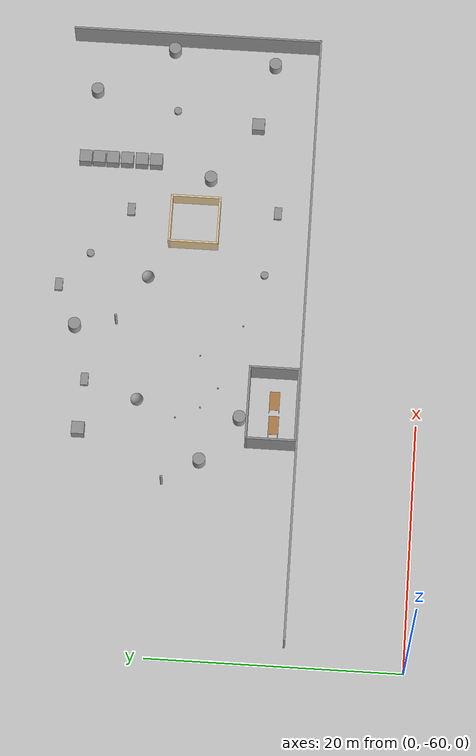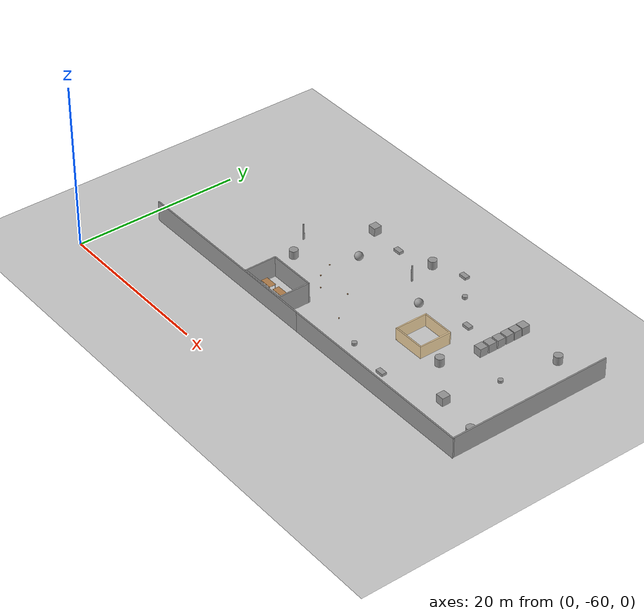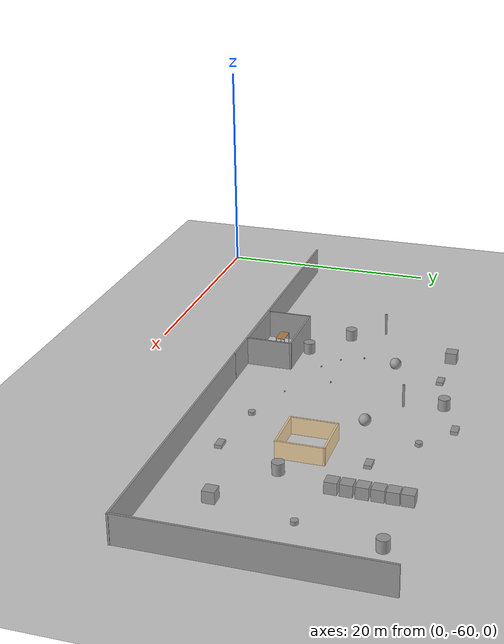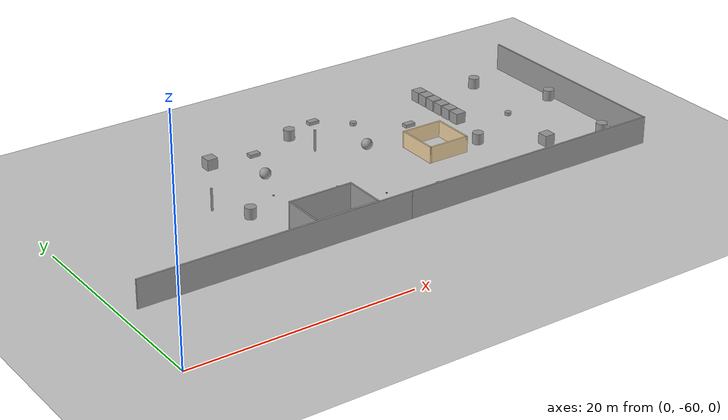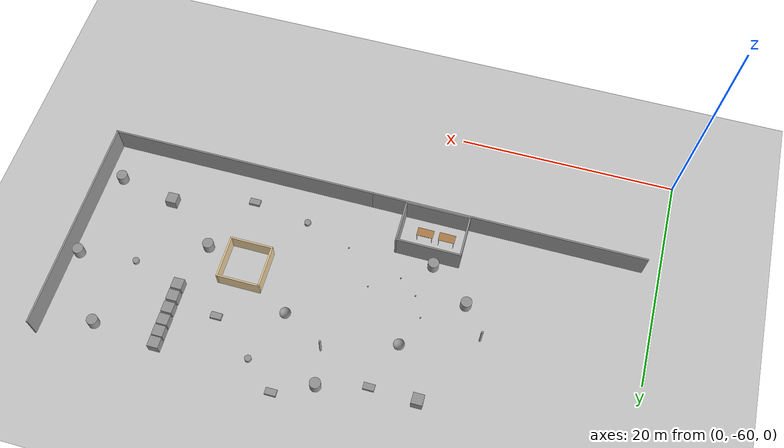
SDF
<sdf version="1.6">
 <world name="default">
  <model name="ground_plane">
   <static>1</static>
   <link name="link">
    <collision name="collision">
     <geometry><plane><normal>0 0 1</normal><size>105 105</size></plane></geometry>
     <surface>
      <contact><collide_bitmask>65535</collide_bitmask></contact>
      <friction><ode><mu>100</mu><mu2>50</mu2></ode></friction>
     </surface>
    </collision>
    <visual name="visual">
     <cast_shadows>0</cast_shadows>
     <geometry><plane><normal>0 0 1</normal><size>105 105</size></plane></geometry>
     <material>
      <script><uri>file://media/materials/scripts/gazebo.material</uri><name>Gazebo/Grey</name></script>
     </material>
    </visual>
   </link>
  </model>
  <model name="unit_cylinder_2">
   <pose>15.9962 -43.1928 0.499805 -0 -0 -0</pose>
   <link name="link">
    <inertial>
     <mass>1</mass>
     <inertia><ixx>0.145833</ixx><ixy>0</ixy><ixz>0</ixz><iyy>0.145833</iyy><iyz>0</iyz><izz>0.125</izz></inertia>
    </inertial>
    <collision name="collision">
     <geometry><cylinder><radius>0.5</radius><length>1</length></cylinder></geometry>
    </collision>
    <visual name="visual">
     <geometry><cylinder><radius>0.5</radius><length>1</length></cylinder></geometry>
     <material>
      <script><name>Gazebo/Grey</name><uri>file://media/materials/scripts/gazebo.material</uri></script>
     </material>
    </visual>
   </link>
  </model>
  <model name="base4x6_0">
   <pose>20.4097 -48.6671 0 0 -0 0</pose>
   <link name="Wall_23">
    <collision name="Wall_23_Collision">
     <geometry><box><size>4 0.15 2.5</size></box></geometry>
     <pose>0 0 1.25 0 -0 0</pose>
    </collision>
    <visual name="Wall_23_Visual">
     <pose>0 0 1.25 0 -0 0</pose>
     <geometry><box><size>4 0.15 2.5</size></box></geometry>
     <material>
      <script><uri>file://media/materials/scripts/gazebo.material</uri><name>Gazebo/Grey</name></script>
      <ambient>1 1 1 1</ambient>
     </material>
     <meta><layer>0</layer></meta>
    </visual>
    <pose>-2.925 0 0 0 -0 -1.5708</pose>
   </link>
   <link name="Wall_24">
    <collision name="Wall_24_Collision">
     <geometry><box><size>6 0.15 2.5</size></box></geometry>
     <pose>0 0 1.25 0 -0 0</pose>
    </collision>
    <visual name="Wall_24_Visual">
     <pose>0 0 1.25 0 -0 0</pose>
     <geometry><box><size>6 0.15 2.5</size></box></geometry>
     <material>
      <script><uri>file://media/materials/scripts/gazebo.material</uri><name>Gazebo/Grey</name></script>
      <ambient>1 1 1 1</ambient>
     </material>
     <meta><layer>0</layer></meta>
    </visual>
    <pose>-0 -1.925 0 0 -0 0</pose>
   </link>
   <link name="Wall_25">
    <collision name="Wall_25_Collision">
     <geometry><box><size>4 0.15 2.5</size></box></geometry>
     <pose>0 0 1.25 0 -0 0</pose>
    </collision>
    <visual name="Wall_25_Visual">
     <pose>0 0 1.25 0 -0 0</pose>
     <geometry><box><size>4 0.15 2.5</size></box></geometry>
     <material>
      <script><uri>file://media/materials/scripts/gazebo.material</uri><name>Gazebo/Grey</name></script>
      <ambient>1 1 1 1</ambient>
     </material>
     <meta><layer>0</layer></meta>
    </visual>
    <pose>2.925 0 0 0 -0 1.5708</pose>
   </link>
   <link name="Wall_26">
    <collision name="Wall_26_Collision">
     <geometry><box><size>6 0.15 2.5</size></box></geometry>
     <pose>0 0 1.25 0 -0 0</pose>
    </collision>
    <visual name="Wall_26_Visual">
     <pose>0 0 1.25 0 -0 0</pose>
     <geometry><box><size>6 0.15 2.5</size></box></geometry>
     <material>
      <script><uri>file://media/materials/scripts/gazebo.material</uri><name>Gazebo/Grey</name></script>
      <ambient>1 1 1 1</ambient>
     </material>
     <meta><layer>0</layer></meta>
    </visual>
    <pose>-0 1.925 0 0 -0 3.14159</pose>
   </link>
   <static>1</static>
  </model>
  <model name="wall_v20m_8">
   <pose>51.4045 -40.7218 0 0 -0 0</pose>
   <link name="Wall_35">
    <collision name="Wall_35_Collision">
     <geometry><box><size>20 0.15 2.5</size></box></geometry>
     <pose>0 0 1.25 0 -0 0</pose>
    </collision>
    <visual name="Wall_35_Visual">
     <pose>0 0 1.25 0 -0 0</pose>
     <geometry><box><size>20 0.15 2.5</size></box></geometry>
     <material>
      <script><uri>file://media/materials/scripts/gazebo.material</uri><name>Gazebo/Grey</name></script>
      <ambient>1 1 1 1</ambient>
     </material>
     <meta><layer>0</layer></meta>
    </visual>
    <pose>0 -0 0 0 -0 -1.5708</pose>
   </link>
   <static>1</static>
  </model>
  <model name="wall_25m_8">
   <pose>14.0268 -50.7126 0 0 -0 0</pose>
   <link name="Wall_28">
    <collision name="Wall_28_Collision">
     <geometry><box><size>25 0.15 2.5</size></box></geometry>
     <pose>0 0 1.25 0 -0 0</pose>
    </collision>
    <visual name="Wall_28_Visual">
     <pose>0 0 1.25 0 -0 0</pose>
     <geometry><box><size>25 0.15 2.5</size></box></geometry>
     <material>
      <script><uri>file://media/materials/scripts/gazebo.material</uri><name>Gazebo/Grey</name></script>
      <ambient>1 1 1 1</ambient>
     </material>
     <meta><layer>0</layer></meta>
    </visual>
   </link>
   <static>1</static>
  </model>
  <model name="wall_25m_9">
   <pose>39.0197 -50.7168 0 0 -0 0</pose>
   <link name="Wall_28">
    <collision name="Wall_28_Collision">
     <geometry><box><size>25 0.15 2.5</size></box></geometry>
     <pose>0 0 1.25 0 -0 0</pose>
    </collision>
    <visual name="Wall_28_Visual">
     <pose>0 0 1.25 0 -0 0</pose>
     <geometry><box><size>25 0.15 2.5</size></box></geometry>
     <material>
      <script><uri>file://media/materials/scripts/gazebo.material</uri><name>Gazebo/Grey</name></script>
      <ambient>1 1 1 1</ambient>
     </material>
     <meta><layer>0</layer></meta>
    </visual>
   </link>
   <static>1</static>
  </model>
  <model name="table_12">
   <static>1</static>
   <link name="link">
    <collision name="surface">
     <pose>0 0 1 0 -0 0</pose>
     <geometry><box><size>1.5 0.8 0.03</size></box></geometry>
     <surface><friction><ode><mu>0.6</mu><mu2>0.6</mu2></ode></friction></surface>
    </collision>
    <visual name="visual1">
     <pose>0 0 1 0 -0 0</pose>
     <geometry><box><size>1.5 0.8 0.03</size></box></geometry>
     <material>
      <script><uri>file://media/materials/scripts/gazebo.material</uri><name>Gazebo/Wood</name></script>
     </material>
    </visual>
    <collision name="front_left_leg">
     <pose>0.68 0.38 0.5 0 -0 0</pose>
     <geometry><cylinder><radius>0.02</radius><length>1</length></cylinder></geometry>
    </collision>
    <visual name="front_left_leg">
     <pose>0.68 0.38 0.5 0 -0 0</pose>
     <geometry><cylinder><radius>0.02</radius><length>1</length></cylinder></geometry>
     <material>
      <script><uri>file://media/materials/scripts/gazebo.material</uri><name>Gazebo/Grey</name></script>
     </material>
    </visual>
    <collision name="front_right_leg">
     <pose>0.68 -0.38 0.5 0 -0 0</pose>
     <geometry><cylinder><radius>0.02</radius><length>1</length></cylinder></geometry>
    </collision>
    <visual name="front_right_leg">
     <pose>0.68 -0.38 0.5 0 -0 0</pose>
     <geometry><cylinder><radius>0.02</radius><length>1</length></cylinder></geometry>
     <material>
      <script><uri>file://media/materials/scripts/gazebo.material</uri><name>Gazebo/Grey</name></script>
     </material>
    </visual>
    <collision name="back_right_leg">
     <pose>-0.68 -0.38 0.5 0 -0 0</pose>
     <geometry><cylinder><radius>0.02</radius><length>1</length></cylinder></geometry>
    </collision>
    <visual name="back_right_leg">
     <pose>-0.68 -0.38 0.5 0 -0 0</pose>
     <geometry><cylinder><radius>0.02</radius><length>1</length></cylinder></geometry>
     <material>
      <script><uri>file://media/materials/scripts/gazebo.material</uri><name>Gazebo/Grey</name></script>
     </material>
    </visual>
    <collision name="back_left_leg">
     <pose>-0.68 0.38 0.5 0 -0 0</pose>
     <geometry><cylinder><radius>0.02</radius><length>1</length></cylinder></geometry>
    </collision>
    <visual name="back_left_leg">
     <pose>-0.68 0.38 0.5 0 -0 0</pose>
     <geometry><cylinder><radius>0.02</radius><length>1</length></cylinder></geometry>
     <material>
      <script><uri>file://media/materials/scripts/gazebo.material</uri><name>Gazebo/Grey</name></script>
     </material>
    </visual>
   </link>
   <pose>19.0783 -48.8312 0 0 -0 0</pose>
  </model>
  <model name="table_13">
   <static>1</static>
   <link name="link">
    <collision name="surface">
     <pose>0 0 1 0 -0 0</pose>
     <geometry><box><size>1.5 0.8 0.03</size></box></geometry>
     <surface><friction><ode><mu>0.6</mu><mu2>0.6</mu2></ode></friction></surface>
    </collision>
    <visual name="visual1">
     <pose>0 0 1 0 -0 0</pose>
     <geometry><box><size>1.5 0.8 0.03</size></box></geometry>
     <material>
      <script><uri>file://media/materials/scripts/gazebo.material</uri><name>Gazebo/Wood</name></script>
     </material>
    </visual>
    <collision name="front_left_leg">
     <pose>0.68 0.38 0.5 0 -0 0</pose>
     <geometry><cylinder><radius>0.02</radius><length>1</length></cylinder></geometry>
    </collision>
    <visual name="front_left_leg">
     <pose>0.68 0.38 0.5 0 -0 0</pose>
     <geometry><cylinder><radius>0.02</radius><length>1</length></cylinder></geometry>
     <material>
      <script><uri>file://media/materials/scripts/gazebo.material</uri><name>Gazebo/Grey</name></script>
     </material>
    </visual>
    <collision name="front_right_leg">
     <pose>0.68 -0.38 0.5 0 -0 0</pose>
     <geometry><cylinder><radius>0.02</radius><length>1</length></cylinder></geometry>
    </collision>
    <visual name="front_right_leg">
     <pose>0.68 -0.38 0.5 0 -0 0</pose>
     <geometry><cylinder><radius>0.02</radius><length>1</length></cylinder></geometry>
     <material>
      <script><uri>file://media/materials/scripts/gazebo.material</uri><name>Gazebo/Grey</name></script>
     </material>
    </visual>
    <collision name="back_right_leg">
     <pose>-0.68 -0.38 0.5 0 -0 0</pose>
     <geometry><cylinder><radius>0.02</radius><length>1</length></cylinder></geometry>
    </collision>
    <visual name="back_right_leg">
     <pose>-0.68 -0.38 0.5 0 -0 0</pose>
     <geometry><cylinder><radius>0.02</radius><length>1</length></cylinder></geometry>
     <material>
      <script><uri>file://media/materials/scripts/gazebo.material</uri><name>Gazebo/Grey</name></script>
     </material>
    </visual>
    <collision name="back_left_leg">
     <pose>-0.68 0.38 0.5 0 -0 0</pose>
     <geometry><cylinder><radius>0.02</radius><length>1</length></cylinder></geometry>
    </collision>
    <visual name="back_left_leg">
     <pose>-0.68 0.38 0.5 0 -0 0</pose>
     <geometry><cylinder><radius>0.02</radius><length>1</length></cylinder></geometry>
     <material>
      <script><uri>file://media/materials/scripts/gazebo.material</uri><name>Gazebo/Grey</name></script>
     </material>
    </visual>
   </link>
   <pose>21.0761 -48.8079 0 0 -0 0</pose>
  </model>
  <model name="unit_sphere">
   <pose>20.702 -37.9798 0.5 0 -0 0</pose>
   <link name="link">
    <inertial>
     <mass>1</mass>
     <inertia><ixx>0.1</ixx><ixy>0</ixy><ixz>0</ixz><iyy>0.1</iyy><iyz>0</iyz><izz>0.1</izz></inertia>
    </inertial>
    <collision name="collision"><geometry><sphere><radius>0.5</radius></sphere></geometry></collision>
    <visual name="visual">
     <geometry><sphere><radius>0.5</radius></sphere></geometry>
     <material>
      <script><name>Gazebo/Grey</name><uri>file://media/materials/scripts/gazebo.material</uri></script>
     </material>
    </visual>
   </link>
  </model>
  <model name="unit_sphere_0">
   <pose>30.9933 -38.1291 0.5 0 -0 0</pose>
   <link name="link">
    <inertial>
     <mass>1</mass>
     <inertia><ixx>0.1</ixx><ixy>0</ixy><ixz>0</ixz><iyy>0.1</iyy><iyz>0</iyz><izz>0.1</izz></inertia>
    </inertial>
    <collision name="collision"><geometry><sphere><radius>0.5</radius></sphere></geometry></collision>
    <visual name="visual">
     <geometry><sphere><radius>0.5</radius></sphere></geometry>
     <material>
      <script><name>Gazebo/Grey</name><uri>file://media/materials/scripts/gazebo.material</uri></script>
     </material>
    </visual>
   </link>
  </model>
  <model name="unit_cylinder">
   <pose>39.6954 -42.5641 0.499805 -0 -0 -0</pose>
   <link name="link">
    <inertial>
     <mass>1</mass>
     <inertia><ixx>0.145833</ixx><ixy>0</ixy><ixz>0</ixz><iyy>0.145833</iyy><iyz>0</iyz><izz>0.125</izz></inertia>
    </inertial>
    <collision name="collision">
     <geometry><cylinder><radius>0.5</radius><length>1</length></cylinder></geometry>
    </collision>
    <visual name="visual">
     <geometry><cylinder><radius>0.5</radius><length>1</length></cylinder></geometry>
     <material>
      <script><name>Gazebo/Grey</name><uri>file://media/materials/scripts/gazebo.material</uri></script>
     </material>
    </visual>
   </link>
  </model>
  <model name="box4x4x1.5_3">
   <pose>35.7872 -41.5085 0 0 -0 0</pose>
   <link name="Wall_5">
    <collision name="Wall_5_Collision">
     <geometry><box><size>4 0.15 1.5</size></box></geometry>
     <pose>0 0 0.75 0 -0 0</pose>
    </collision>
    <visual name="Wall_5_Visual">
     <pose>0 0 0.75 0 -0 0</pose>
     <geometry><box><size>4 0.15 1.5</size></box></geometry>
     <material>
      <script><uri>file://media/materials/scripts/gazebo.material</uri><name>Gazebo/Grey</name></script>
      <ambient>0.921569 0.807843 0.615686 1</ambient>
     </material>
     <meta><layer>0</layer></meta>
    </visual>
    <pose>-1.925 -0 0 0 -0 -1.5708</pose>
   </link>
   <link name="Wall_6">
    <collision name="Wall_6_Collision">
     <geometry><box><size>4 0.15 1.5</size></box></geometry>
     <pose>0 0 0.75 0 -0 0</pose>
    </collision>
    <visual name="Wall_6_Visual">
     <pose>0 0 0.75 0 -0 0</pose>
     <geometry><box><size>4 0.15 1.5</size></box></geometry>
     <material>
      <script><uri>file://media/materials/scripts/gazebo.material</uri><name>Gazebo/Grey</name></script>
      <ambient>0.921569 0.807843 0.615686 1</ambient>
     </material>
     <meta><layer>0</layer></meta>
    </visual>
    <pose>0 -1.925 0 0 -0 0</pose>
   </link>
   <link name="Wall_7">
    <collision name="Wall_7_Collision">
     <geometry><box><size>4 0.15 1.5</size></box></geometry>
     <pose>0 0 0.75 0 -0 0</pose>
    </collision>
    <visual name="Wall_7_Visual">
     <pose>0 0 0.75 0 -0 0</pose>
     <geometry><box><size>4 0.15 1.5</size></box></geometry>
     <material>
      <script><uri>file://media/materials/scripts/gazebo.material</uri><name>Gazebo/Grey</name></script>
      <ambient>0.921569 0.807843 0.615686 1</ambient>
     </material>
     <meta><layer>0</layer></meta>
    </visual>
    <pose>1.925 -0 0 0 -0 1.5708</pose>
   </link>
   <link name="Wall_8">
    <collision name="Wall_8_Collision">
     <geometry><box><size>4 0.15 1.5</size></box></geometry>
     <pose>0 0 0.75 0 -0 0</pose>
    </collision>
    <visual name="Wall_8_Visual">
     <pose>0 0 0.75 0 -0 0</pose>
     <geometry><box><size>4 0.15 1.5</size></box></geometry>
     <material>
      <script><uri>file://media/materials/scripts/gazebo.material</uri><name>Gazebo/Grey</name></script>
      <ambient>0.921569 0.807843 0.615686 1</ambient>
     </material>
     <meta><layer>0</layer></meta>
    </visual>
    <pose>0 1.925 0 0 -0 3.14159</pose>
   </link>
   <static>1</static>
  </model>
  <model name="unit_cylinder_clone">
   <pose>46.8131 -32.883 0.499805 -0 -0 -0</pose>
   <link name="link">
    <inertial>
     <mass>1</mass>
     <inertia><ixx>0.145833</ixx><ixy>0</ixy><ixz>0</ixz><iyy>0.145833</iyy><iyz>0</iyz><izz>0.125</izz></inertia>
    </inertial>
    <collision name="collision">
     <geometry><cylinder><radius>0.5</radius><length>1</length></cylinder></geometry>
    </collision>
    <visual name="visual">
     <geometry><cylinder><radius>0.5</radius><length>1</length></cylinder></geometry>
     <material>
      <script><name>Gazebo/Grey</name><uri>file://media/materials/scripts/gazebo.material</uri></script>
     </material>
    </visual>
   </link>
  </model>
  <model name="unit_cylinder_clone_2">
   <pose>26.5622 -32.5926 0.499805 -0 -0 -0</pose>
   <link name="link">
    <inertial>
     <mass>1</mass>
     <inertia><ixx>0.145833</ixx><ixy>0</ixy><ixz>0</ixz><iyy>0.145833</iyy><iyz>0</iyz><izz>0.125</izz></inertia>
    </inertial>
    <collision name="collision">
     <geometry><cylinder><radius>0.5</radius><length>1</length></cylinder></geometry>
    </collision>
    <visual name="visual">
     <geometry><cylinder><radius>0.5</radius><length>1</length></cylinder></geometry>
     <material>
      <script><name>Gazebo/Grey</name><uri>file://media/materials/scripts/gazebo.material</uri></script>
     </material>
    </visual>
   </link>
  </model>
  <model name="unit_cylinder30x30cm_0_clone">
   <link name="link">
    <inertial>
     <mass>1</mass>
     <inertia><ixx>0.145833</ixx><ixy>0</ixy><ixz>0</ixz><iyy>0.145833</iyy><iyz>0</iyz><izz>0.125</izz></inertia>
    </inertial>
    <visual name="visual">
     <geometry><cylinder><radius>0.3</radius><length>0.3</length></cylinder></geometry>
     <material>
      <script><name>Gazebo/Grey</name><uri>file://media/materials/scripts/gazebo.material</uri></script>
      <shader type="vertex"><normal_map>__default__</normal_map></shader>
      <ambient>0.3 0.3 0.3 1</ambient>
      <diffuse>0.7 0.7 0.7 1</diffuse>
      <specular>0.01 0.01 0.01 1</specular>
      <emissive>0 0 0 1</emissive>
     </material>
    </visual>
    <collision name="collision">
     <geometry><cylinder><radius>0.3</radius><length>0.3</length></cylinder></geometry>
     <surface>
      <friction>
       <ode><mu>1</mu><mu2>1</mu2><fdir1>0 0 0</fdir1><slip1>0</slip1><slip2>0</slip2></ode>
       <torsional>
        <coefficient>1</coefficient>
        <patch_radius>0</patch_radius>
        <surface_radius>0</surface_radius>
        <use_patch_radius>1</use_patch_radius>
        <ode><slip>0</slip></ode>
       </torsional>
      </friction>
      <bounce><restitution_coefficient>0</restitution_coefficient><threshold>1e+06</threshold></bounce>
      <contact>
       <collide_without_contact>0</collide_without_contact>
       <collide_without_contact_bitmask>1</collide_without_contact_bitmask>
       <collide_bitmask>1</collide_bitmask>
       <ode>
        <soft_cfm>0</soft_cfm>
        <soft_erp>0.2</soft_erp>
        <kp>1e+13</kp>
        <kd>1</kd>
        <max_vel>0.01</max_vel>
        <min_depth>0</min_depth>
       </ode>
       <bullet>
        <split_impulse>1</split_impulse>
        <split_impulse_penetration_threshold>-0.01</split_impulse_penetration_threshold>
        <soft_cfm>0</soft_cfm>
        <soft_erp>0.2</soft_erp>
        <kp>1e+13</kp>
        <kd>1</kd>
       </bullet>
      </contact>
     </surface>
    </collision>
   </link>
   <static>0</static>
   <pose>45.5559 -39.4846 0.149805 -0 -0 -0</pose>
  </model>
  <model name="unit_cylinder30x30cm_0_clone_1">
   <link name="link">
    <inertial>
     <mass>1</mass>
     <inertia><ixx>0.145833</ixx><ixy>0</ixy><ixz>0</ixz><iyy>0.145833</iyy><iyz>0</iyz><izz>0.125</izz></inertia>
    </inertial>
    <visual name="visual">
     <geometry><cylinder><radius>0.3</radius><length>0.3</length></cylinder></geometry>
     <material>
      <script><name>Gazebo/Grey</name><uri>file://media/materials/scripts/gazebo.material</uri></script>
      <shader type="vertex"><normal_map>__default__</normal_map></shader>
      <ambient>0.3 0.3 0.3 1</ambient>
      <diffuse>0.7 0.7 0.7 1</diffuse>
      <specular>0.01 0.01 0.01 1</specular>
      <emissive>0 0 0 1</emissive>
     </material>
    </visual>
    <collision name="collision">
     <geometry><cylinder><radius>0.3</radius><length>0.3</length></cylinder></geometry>
     <surface>
      <friction>
       <ode><mu>1</mu><mu2>1</mu2><fdir1>0 0 0</fdir1><slip1>0</slip1><slip2>0</slip2></ode>
       <torsional>
        <coefficient>1</coefficient>
        <patch_radius>0</patch_radius>
        <surface_radius>0</surface_radius>
        <use_patch_radius>1</use_patch_radius>
        <ode><slip>0</slip></ode>
       </torsional>
      </friction>
      <bounce><restitution_coefficient>0</restitution_coefficient><threshold>1e+06</threshold></bounce>
      <contact>
       <collide_without_contact>0</collide_without_contact>
       <collide_without_contact_bitmask>1</collide_without_contact_bitmask>
       <collide_bitmask>1</collide_bitmask>
       <ode>
        <soft_cfm>0</soft_cfm>
        <soft_erp>0.2</soft_erp>
        <kp>1e+13</kp>
        <kd>1</kd>
        <max_vel>0.01</max_vel>
        <min_depth>0</min_depth>
       </ode>
       <bullet>
        <split_impulse>1</split_impulse>
        <split_impulse_penetration_threshold>-0.01</split_impulse_penetration_threshold>
        <soft_cfm>0</soft_cfm>
        <soft_erp>0.2</soft_erp>
        <kp>1e+13</kp>
        <kd>1</kd>
       </bullet>
      </contact>
     </surface>
    </collision>
   </link>
   <static>0</static>
   <pose>32.8372 -33.3697 0.149805 -0 -0 -0</pose>
  </model>
  <model name="unit_cylinder30x30cm_0_clone_2">
   <link name="link">
    <inertial>
     <mass>1</mass>
     <inertia><ixx>0.145833</ixx><ixy>0</ixy><ixz>0</ixz><iyy>0.145833</iyy><iyz>0</iyz><izz>0.125</izz></inertia>
    </inertial>
    <visual name="visual">
     <geometry><cylinder><radius>0.3</radius><length>0.3</length></cylinder></geometry>
     <material>
      <script><name>Gazebo/Grey</name><uri>file://media/materials/scripts/gazebo.material</uri></script>
      <shader type="vertex"><normal_map>__default__</normal_map></shader>
      <ambient>0.3 0.3 0.3 1</ambient>
      <diffuse>0.7 0.7 0.7 1</diffuse>
      <specular>0.01 0.01 0.01 1</specular>
      <emissive>0 0 0 1</emissive>
     </material>
    </visual>
    <collision name="collision">
     <geometry><cylinder><radius>0.3</radius><length>0.3</length></cylinder></geometry>
     <surface>
      <friction>
       <ode><mu>1</mu><mu2>1</mu2><fdir1>0 0 0</fdir1><slip1>0</slip1><slip2>0</slip2></ode>
       <torsional>
        <coefficient>1</coefficient>
        <patch_radius>0</patch_radius>
        <surface_radius>0</surface_radius>
        <use_patch_radius>1</use_patch_radius>
        <ode><slip>0</slip></ode>
       </torsional>
      </friction>
      <bounce><restitution_coefficient>0</restitution_coefficient><threshold>1e+06</threshold></bounce>
      <contact>
       <collide_without_contact>0</collide_without_contact>
       <collide_without_contact_bitmask>1</collide_without_contact_bitmask>
       <collide_bitmask>1</collide_bitmask>
       <ode>
        <soft_cfm>0</soft_cfm>
        <soft_erp>0.2</soft_erp>
        <kp>1e+13</kp>
        <kd>1</kd>
        <max_vel>0.01</max_vel>
        <min_depth>0</min_depth>
       </ode>
       <bullet>
        <split_impulse>1</split_impulse>
        <split_impulse_penetration_threshold>-0.01</split_impulse_penetration_threshold>
        <soft_cfm>0</soft_cfm>
        <soft_erp>0.2</soft_erp>
        <kp>1e+13</kp>
        <kd>1</kd>
       </bullet>
      </contact>
     </surface>
    </collision>
   </link>
   <static>0</static>
   <pose>31.823 -47.3604 0.149805 -0 -0 -0</pose>
  </model>
  <model name="unit_cylinder_clone_1_clone">
   <pose>49.8914 -47.1463 0.499805 -0 -0 -0</pose>
   <link name="link">
    <inertial>
     <mass>1</mass>
     <inertia><ixx>0.145833</ixx><ixy>0</ixy><ixz>0</ixz><iyy>0.145833</iyy><iyz>0</iyz><izz>0.125</izz></inertia>
    </inertial>
    <collision name="collision">
     <geometry><cylinder><radius>0.5</radius><length>1</length></cylinder></geometry>
    </collision>
    <visual name="visual">
     <geometry><cylinder><radius>0.5</radius><length>1</length></cylinder></geometry>
     <material>
      <script><name>Gazebo/Grey</name><uri>file://media/materials/scripts/gazebo.material</uri></script>
     </material>
    </visual>
   </link>
  </model>
  <model name="unit_cylinder_clone_1_clone_0">
   <pose>50.7559 -38.9102 0.499805 -0 -0 -0</pose>
   <link name="link">
    <inertial>
     <mass>1</mass>
     <inertia><ixx>0.145833</ixx><ixy>0</ixy><ixz>0</ixz><iyy>0.145833</iyy><iyz>0</iyz><izz>0.125</izz></inertia>
    </inertial>
    <collision name="collision">
     <geometry><cylinder><radius>0.5</radius><length>1</length></cylinder></geometry>
    </collision>
    <visual name="visual">
     <geometry><cylinder><radius>0.5</radius><length>1</length></cylinder></geometry>
     <material>
      <script><name>Gazebo/Grey</name><uri>file://media/materials/scripts/gazebo.material</uri></script>
     </material>
    </visual>
   </link>
  </model>
  <model name="unit_box_2_clone_1">
   <pose>17.9413 -33.5511 0.499902 0.000196 -0 -7e-06</pose>
   <link name="link">
    <inertial>
     <mass>1</mass>
     <inertia>
      <ixx>0.166667</ixx>
      <ixy>0</ixy>
      <ixz>0</ixz>
      <iyy>0.166667</iyy>
      <iyz>0</iyz>
      <izz>0.166667</izz>
     </inertia>
    </inertial>
    <collision name="collision"><geometry><box><size>1 1 1</size></box></geometry></collision>
    <visual name="visual">
     <geometry><box><size>1 1 1</size></box></geometry>
     <material>
      <script><name>Gazebo/Grey</name><uri>file://media/materials/scripts/gazebo.material</uri></script>
     </material>
    </visual>
   </link>
  </model>
  <model name="unit_box_2_clone_3">
   <pose>40.875 -32.3986 0.499902 0.000196 0 -2e-06</pose>
   <link name="link">
    <inertial>
     <mass>1</mass>
     <inertia>
      <ixx>0.166667</ixx>
      <ixy>0</ixy>
      <ixz>0</ixz>
      <iyy>0.166667</iyy>
      <iyz>0</iyz>
      <izz>0.166667</izz>
     </inertia>
    </inertial>
    <collision name="collision"><geometry><box><size>1 1 1</size></box></geometry></collision>
    <visual name="visual">
     <geometry><box><size>1 1 1</size></box></geometry>
     <material>
      <script><name>Gazebo/Grey</name><uri>file://media/materials/scripts/gazebo.material</uri></script>
     </material>
    </visual>
   </link>
  </model>
  <model name="unit_box_100x60x30cm_0_clone_5">
   <link name="link">
    <inertial>
     <mass>1</mass>
     <inertia>
      <ixx>0.166667</ixx>
      <ixy>0</ixy>
      <ixz>0</ixz>
      <iyy>0.166667</iyy>
      <iyz>0</iyz>
      <izz>0.166667</izz>
     </inertia>
    </inertial>
    <visual name="visual">
     <geometry><box><size>1 0.6 0.3</size></box></geometry>
     <material>
      <script><name>Gazebo/Grey</name><uri>file://media/materials/scripts/gazebo.material</uri></script>
      <shader type="vertex"><normal_map>__default__</normal_map></shader>
      <ambient>0.3 0.3 0.3 1</ambient>
      <diffuse>0.7 0.7 0.7 1</diffuse>
      <specular>0.01 0.01 0.01 1</specular>
      <emissive>0 0 0 1</emissive>
     </material>
    </visual>
    <collision name="collision">
     <geometry><box><size>1 0.6 0.3</size></box></geometry>
     <surface>
      <friction>
       <ode><mu>1</mu><mu2>1</mu2><fdir1>0 0 0</fdir1><slip1>0</slip1><slip2>0</slip2></ode>
       <torsional>
        <coefficient>1</coefficient>
        <patch_radius>0</patch_radius>
        <surface_radius>0</surface_radius>
        <use_patch_radius>1</use_patch_radius>
        <ode><slip>0</slip></ode>
       </torsional>
      </friction>
      <bounce><restitution_coefficient>0</restitution_coefficient><threshold>1e+06</threshold></bounce>
      <contact>
       <collide_without_contact>0</collide_without_contact>
       <collide_without_contact_bitmask>1</collide_without_contact_bitmask>
       <collide_bitmask>1</collide_bitmask>
       <ode>
        <soft_cfm>0</soft_cfm>
        <soft_erp>0.2</soft_erp>
        <kp>1e+13</kp>
        <kd>1</kd>
        <max_vel>0.01</max_vel>
        <min_depth>0</min_depth>
       </ode>
       <bullet>
        <split_impulse>1</split_impulse>
        <split_impulse_penetration_threshold>-0.01</split_impulse_penetration_threshold>
        <soft_cfm>0</soft_cfm>
        <soft_erp>0.2</soft_erp>
        <kp>1e+13</kp>
        <kd>1</kd>
       </bullet>
      </contact>
     </surface>
    </collision>
   </link>
   <static>0</static>
   <pose>22.1983 -33.716 0.15 0 -0 0</pose>
  </model>
  <model name="unit_box_100x60x30cm_0_clone_6">
   <link name="link">
    <inertial>
     <mass>1</mass>
     <inertia>
      <ixx>0.166667</ixx>
      <ixy>0</ixy>
      <ixz>0</ixz>
      <iyy>0.166667</iyy>
      <iyz>0</iyz>
      <izz>0.166667</izz>
     </inertia>
    </inertial>
    <visual name="visual">
     <geometry><box><size>1 0.6 0.3</size></box></geometry>
     <material>
      <script><name>Gazebo/Grey</name><uri>file://media/materials/scripts/gazebo.material</uri></script>
      <shader type="vertex"><normal_map>__default__</normal_map></shader>
      <ambient>0.3 0.3 0.3 1</ambient>
      <diffuse>0.7 0.7 0.7 1</diffuse>
      <specular>0.01 0.01 0.01 1</specular>
      <emissive>0 0 0 1</emissive>
     </material>
    </visual>
    <collision name="collision">
     <geometry><box><size>1 0.6 0.3</size></box></geometry>
     <surface>
      <friction>
       <ode><mu>1</mu><mu2>1</mu2><fdir1>0 0 0</fdir1><slip1>0</slip1><slip2>0</slip2></ode>
       <torsional>
        <coefficient>1</coefficient>
        <patch_radius>0</patch_radius>
        <surface_radius>0</surface_radius>
        <use_patch_radius>1</use_patch_radius>
        <ode><slip>0</slip></ode>
       </torsional>
      </friction>
      <bounce><restitution_coefficient>0</restitution_coefficient><threshold>1e+06</threshold></bounce>
      <contact>
       <collide_without_contact>0</collide_without_contact>
       <collide_without_contact_bitmask>1</collide_without_contact_bitmask>
       <collide_bitmask>1</collide_bitmask>
       <ode>
        <soft_cfm>0</soft_cfm>
        <soft_erp>0.2</soft_erp>
        <kp>1e+13</kp>
        <kd>1</kd>
        <max_vel>0.01</max_vel>
        <min_depth>0</min_depth>
       </ode>
       <bullet>
        <split_impulse>1</split_impulse>
        <split_impulse_penetration_threshold>-0.01</split_impulse_penetration_threshold>
        <soft_cfm>0</soft_cfm>
        <soft_erp>0.2</soft_erp>
        <kp>1e+13</kp>
        <kd>1</kd>
       </bullet>
      </contact>
     </surface>
    </collision>
   </link>
   <static>0</static>
   <pose>36.7805 -36.355 0.15 0 -0 0</pose>
  </model>
  <model name="unit_box_100x60x30cm_0_clone_7">
   <link name="link">
    <inertial>
     <mass>1</mass>
     <inertia>
      <ixx>0.166667</ixx>
      <ixy>0</ixy>
      <ixz>0</ixz>
      <iyy>0.166667</iyy>
      <iyz>0</iyz>
      <izz>0.166667</izz>
     </inertia>
    </inertial>
    <visual name="visual">
     <geometry><box><size>1 0.6 0.3</size></box></geometry>
     <material>
      <script><name>Gazebo/Grey</name><uri>file://media/materials/scripts/gazebo.material</uri></script>
      <shader type="vertex"><normal_map>__default__</normal_map></shader>
      <ambient>0.3 0.3 0.3 1</ambient>
      <diffuse>0.7 0.7 0.7 1</diffuse>
      <specular>0.01 0.01 0.01 1</specular>
      <emissive>0 0 0 1</emissive>
     </material>
    </visual>
    <collision name="collision">
     <geometry><box><size>1 0.6 0.3</size></box></geometry>
     <surface>
      <friction>
       <ode><mu>1</mu><mu2>1</mu2><fdir1>0 0 0</fdir1><slip1>0</slip1><slip2>0</slip2></ode>
       <torsional>
        <coefficient>1</coefficient>
        <patch_radius>0</patch_radius>
        <surface_radius>0</surface_radius>
        <use_patch_radius>1</use_patch_radius>
        <ode><slip>0</slip></ode>
       </torsional>
      </friction>
      <bounce><restitution_coefficient>0</restitution_coefficient><threshold>1e+06</threshold></bounce>
      <contact>
       <collide_without_contact>0</collide_without_contact>
       <collide_without_contact_bitmask>1</collide_without_contact_bitmask>
       <collide_bitmask>1</collide_bitmask>
       <ode>
        <soft_cfm>0</soft_cfm>
        <soft_erp>0.2</soft_erp>
        <kp>1e+13</kp>
        <kd>1</kd>
        <max_vel>0.01</max_vel>
        <min_depth>0</min_depth>
       </ode>
       <bullet>
        <split_impulse>1</split_impulse>
        <split_impulse_penetration_threshold>-0.01</split_impulse_penetration_threshold>
        <soft_cfm>0</soft_cfm>
        <soft_erp>0.2</soft_erp>
        <kp>1e+13</kp>
        <kd>1</kd>
       </bullet>
      </contact>
     </surface>
    </collision>
   </link>
   <static>0</static>
   <pose>37.159 -48.1126 0.15 0 -0 0</pose>
  </model>
  <model name="unit_box_100x60x30cm_0_clone_8">
   <link name="link">
    <inertial>
     <mass>1</mass>
     <inertia>
      <ixx>0.166667</ixx>
      <ixy>0</ixy>
      <ixz>0</ixz>
      <iyy>0.166667</iyy>
      <iyz>0</iyz>
      <izz>0.166667</izz>
     </inertia>
    </inertial>
    <visual name="visual">
     <geometry><box><size>1 0.6 0.3</size></box></geometry>
     <material>
      <script><name>Gazebo/Grey</name><uri>file://media/materials/scripts/gazebo.material</uri></script>
      <shader type="vertex"><normal_map>__default__</normal_map></shader>
      <ambient>0.3 0.3 0.3 1</ambient>
      <diffuse>0.7 0.7 0.7 1</diffuse>
      <specular>0.01 0.01 0.01 1</specular>
      <emissive>0 0 0 1</emissive>
     </material>
    </visual>
    <collision name="collision">
     <geometry><box><size>1 0.6 0.3</size></box></geometry>
     <surface>
      <friction>
       <ode><mu>1</mu><mu2>1</mu2><fdir1>0 0 0</fdir1><slip1>0</slip1><slip2>0</slip2></ode>
       <torsional>
        <coefficient>1</coefficient>
        <patch_radius>0</patch_radius>
        <surface_radius>0</surface_radius>
        <use_patch_radius>1</use_patch_radius>
        <ode><slip>0</slip></ode>
       </torsional>
      </friction>
      <bounce><restitution_coefficient>0</restitution_coefficient><threshold>1e+06</threshold></bounce>
      <contact>
       <collide_without_contact>0</collide_without_contact>
       <collide_without_contact_bitmask>1</collide_without_contact_bitmask>
       <collide_bitmask>1</collide_bitmask>
       <ode>
        <soft_cfm>0</soft_cfm>
        <soft_erp>0.2</soft_erp>
        <kp>1e+13</kp>
        <kd>1</kd>
        <max_vel>0.01</max_vel>
        <min_depth>0</min_depth>
       </ode>
       <bullet>
        <split_impulse>1</split_impulse>
        <split_impulse_penetration_threshold>-0.01</split_impulse_penetration_threshold>
        <soft_cfm>0</soft_cfm>
        <soft_erp>0.2</soft_erp>
        <kp>1e+13</kp>
        <kd>1</kd>
       </bullet>
      </contact>
     </surface>
    </collision>
   </link>
   <static>0</static>
   <pose>30.0265 -31.0589 0.15 0 -0 0</pose>
  </model>
  <model name="wood_cube_10cm_4_clone_5">
   <link name="link">
    <pose>0 0 0.05 0 -0 0</pose>
    <inertial>
     <mass>0.5167</mass>
     <inertia>
      <ixx>0.000861167</ixx>
      <ixy>0</ixy>
      <ixz>0</ixz>
      <iyy>0.000861167</iyy>
      <iyz>0</iyz>
      <izz>0.000861167</izz>
     </inertia>
    </inertial>
    <collision name="collision">
     <geometry><box><size>0.1 0.1 0.1</size></box></geometry>
     <surface>
      <contact>
       <poissons_ratio>0.347</poissons_ratio>
       <elastic_modulus>8.8e+09</elastic_modulus>
       <ode><kp>100000</kp><kd>100</kd><max_vel>100</max_vel><min_depth>0.001</min_depth></ode>
      </contact>
      <friction>
       <torsional>
        <coefficient>1</coefficient>
        <use_patch_radius>0</use_patch_radius>
        <surface_radius>0.01</surface_radius>
       </torsional>
      </friction>
     </surface>
    </collision>
    <visual name="visual">
     <geometry><box><size>0.1 0.1 0.1</size></box></geometry>
     <material>
      <script><uri>file://media/materials/scripts/gazebo.material</uri><name>Gazebo/Wood</name></script>
     </material>
    </visual>
   </link>
   <pose>19.5555 -41.0558 -0.001013 0 -0 0</pose>
  </model>
  <model name="wood_cube_10cm_4_clone_6">
   <link name="link">
    <pose>0 0 0.05 0 -0 0</pose>
    <inertial>
     <mass>0.5167</mass>
     <inertia>
      <ixx>0.000861167</ixx>
      <ixy>0</ixy>
      <ixz>0</ixz>
      <iyy>0.000861167</iyy>
      <iyz>0</iyz>
      <izz>0.000861167</izz>
     </inertia>
    </inertial>
    <collision name="collision">
     <geometry><box><size>0.1 0.1 0.1</size></box></geometry>
     <surface>
      <contact>
       <poissons_ratio>0.347</poissons_ratio>
       <elastic_modulus>8.8e+09</elastic_modulus>
       <ode><kp>100000</kp><kd>100</kd><max_vel>100</max_vel><min_depth>0.001</min_depth></ode>
      </contact>
      <friction>
       <torsional>
        <coefficient>1</coefficient>
        <use_patch_radius>0</use_patch_radius>
        <surface_radius>0.01</surface_radius>
       </torsional>
      </friction>
     </surface>
    </collision>
    <visual name="visual">
     <geometry><box><size>0.1 0.1 0.1</size></box></geometry>
     <material>
      <script><uri>file://media/materials/scripts/gazebo.material</uri><name>Gazebo/Wood</name></script>
     </material>
    </visual>
   </link>
   <pose>20.4812 -42.9597 -0.001013 0 -0 0</pose>
  </model>
  <model name="wood_cube_10cm_4_clone_7">
   <link name="link">
    <pose>0 0 0.05 0 -0 0</pose>
    <inertial>
     <mass>0.5167</mass>
     <inertia>
      <ixx>0.000861167</ixx>
      <ixy>0</ixy>
      <ixz>0</ixz>
      <iyy>0.000861167</iyy>
      <iyz>0</iyz>
      <izz>0.000861167</izz>
     </inertia>
    </inertial>
    <collision name="collision">
     <geometry><box><size>0.1 0.1 0.1</size></box></geometry>
     <surface>
      <contact>
       <poissons_ratio>0.347</poissons_ratio>
       <elastic_modulus>8.8e+09</elastic_modulus>
       <ode><kp>100000</kp><kd>100</kd><max_vel>100</max_vel><min_depth>0.001</min_depth></ode>
      </contact>
      <friction>
       <torsional>
        <coefficient>1</coefficient>
        <use_patch_radius>0</use_patch_radius>
        <surface_radius>0.01</surface_radius>
       </torsional>
      </friction>
     </surface>
    </collision>
    <visual name="visual">
     <geometry><box><size>0.1 0.1 0.1</size></box></geometry>
     <material>
      <script><uri>file://media/materials/scripts/gazebo.material</uri><name>Gazebo/Wood</name></script>
     </material>
    </visual>
   </link>
   <pose>22.163 -44.2683 -0.001013 0 -0 0</pose>
  </model>
  <model name="wood_cube_10cm_4_clone_8">
   <link name="link">
    <pose>0 0 0.05 0 -0 0</pose>
    <inertial>
     <mass>0.5167</mass>
     <inertia>
      <ixx>0.000861167</ixx>
      <ixy>0</ixy>
      <ixz>0</ixz>
      <iyy>0.000861167</iyy>
      <iyz>0</iyz>
      <izz>0.000861167</izz>
     </inertia>
    </inertial>
    <collision name="collision">
     <geometry><box><size>0.1 0.1 0.1</size></box></geometry>
     <surface>
      <contact>
       <poissons_ratio>0.347</poissons_ratio>
       <elastic_modulus>8.8e+09</elastic_modulus>
       <ode><kp>100000</kp><kd>100</kd><max_vel>100</max_vel><min_depth>0.001</min_depth></ode>
      </contact>
      <friction>
       <torsional>
        <coefficient>1</coefficient>
        <use_patch_radius>0</use_patch_radius>
        <surface_radius>0.01</surface_radius>
       </torsional>
      </friction>
     </surface>
    </collision>
    <visual name="visual">
     <geometry><box><size>0.1 0.1 0.1</size></box></geometry>
     <material>
      <script><uri>file://media/materials/scripts/gazebo.material</uri><name>Gazebo/Wood</name></script>
     </material>
    </visual>
   </link>
   <pose>24.7835 -42.6999 -0.001013 0 -0 0</pose>
  </model>
  <model name="wood_cube_10cm_4_clone_9">
   <link name="link">
    <pose>0 0 0.05 0 -0 0</pose>
    <inertial>
     <mass>0.5167</mass>
     <inertia>
      <ixx>0.000861167</ixx>
      <ixy>0</ixy>
      <ixz>0</ixz>
      <iyy>0.000861167</iyy>
      <iyz>0</iyz>
      <izz>0.000861167</izz>
     </inertia>
    </inertial>
    <collision name="collision">
     <geometry><box><size>0.1 0.1 0.1</size></box></geometry>
     <surface>
      <contact>
       <poissons_ratio>0.347</poissons_ratio>
       <elastic_modulus>8.8e+09</elastic_modulus>
       <ode><kp>100000</kp><kd>100</kd><max_vel>100</max_vel><min_depth>0.001</min_depth></ode>
      </contact>
      <friction>
       <torsional>
        <coefficient>1</coefficient>
        <use_patch_radius>0</use_patch_radius>
        <surface_radius>0.01</surface_radius>
       </torsional>
      </friction>
     </surface>
    </collision>
    <visual name="visual">
     <geometry><box><size>0.1 0.1 0.1</size></box></geometry>
     <material>
      <script><uri>file://media/materials/scripts/gazebo.material</uri><name>Gazebo/Wood</name></script>
     </material>
    </visual>
   </link>
   <pose>27.4775 -45.9582 -0.001013 0 -0 0</pose>
  </model>
  <model name="unit_cylinder_2_clone_3">
   <pose>19.6608 -46.1191 0.499805 -0 -0 -0</pose>
   <link name="link">
    <inertial>
     <mass>1</mass>
     <inertia><ixx>0.145833</ixx><ixy>0</ixy><ixz>0</ixz><iyy>0.145833</iyy><iyz>0</iyz><izz>0.125</izz></inertia>
    </inertial>
    <collision name="collision">
     <geometry><cylinder><radius>0.5</radius><length>1</length></cylinder></geometry>
    </collision>
    <visual name="visual">
     <geometry><cylinder><radius>0.5</radius><length>1</length></cylinder></geometry>
     <material>
      <script><name>Gazebo/Grey</name><uri>file://media/materials/scripts/gazebo.material</uri></script>
     </material>
    </visual>
   </link>
  </model>
  <model name="unit_box_2_clone_3_clone_0">
   <pose>40.89 -33.4781 0.499902 0.000196 0 -9e-06</pose>
   <link name="link">
    <inertial>
     <mass>1</mass>
     <inertia>
      <ixx>0.166667</ixx>
      <ixy>0</ixy>
      <ixz>0</ixz>
      <iyy>0.166667</iyy>
      <iyz>0</iyz>
      <izz>0.166667</izz>
     </inertia>
    </inertial>
    <collision name="collision"><geometry><box><size>1 1 1</size></box></geometry></collision>
    <visual name="visual">
     <geometry><box><size>1 1 1</size></box></geometry>
     <material>
      <script><name>Gazebo/Grey</name><uri>file://media/materials/scripts/gazebo.material</uri></script>
     </material>
    </visual>
   </link>
  </model>
  <model name="unit_box_2_clone_3_clone_1">
   <pose>40.8885 -34.581 0.499902 0.000196 0 -9e-06</pose>
   <link name="link">
    <inertial>
     <mass>1</mass>
     <inertia>
      <ixx>0.166667</ixx>
      <ixy>0</ixy>
      <ixz>0</ixz>
      <iyy>0.166667</iyy>
      <iyz>0</iyz>
      <izz>0.166667</izz>
     </inertia>
    </inertial>
    <collision name="collision"><geometry><box><size>1 1 1</size></box></geometry></collision>
    <visual name="visual">
     <geometry><box><size>1 1 1</size></box></geometry>
     <material>
      <script><name>Gazebo/Grey</name><uri>file://media/materials/scripts/gazebo.material</uri></script>
     </material>
    </visual>
   </link>
  </model>
  <model name="unit_box_2_clone_3_clone_2">
   <pose>40.905 -35.7417 0.499902 0.000196 0 -2e-06</pose>
   <link name="link">
    <inertial>
     <mass>1</mass>
     <inertia>
      <ixx>0.166667</ixx>
      <ixy>0</ixy>
      <ixz>0</ixz>
      <iyy>0.166667</iyy>
      <iyz>0</iyz>
      <izz>0.166667</izz>
     </inertia>
    </inertial>
    <collision name="collision"><geometry><box><size>1 1 1</size></box></geometry></collision>
    <visual name="visual">
     <geometry><box><size>1 1 1</size></box></geometry>
     <material>
      <script><name>Gazebo/Grey</name><uri>file://media/materials/scripts/gazebo.material</uri></script>
     </material>
    </visual>
   </link>
  </model>
  <model name="unit_box_2_clone_3_clone_3">
   <pose>40.902 -36.9235 0.499902 0.000196 0 -2e-06</pose>
   <link name="link">
    <inertial>
     <mass>1</mass>
     <inertia>
      <ixx>0.166667</ixx>
      <ixy>0</ixy>
      <ixz>0</ixz>
      <iyy>0.166667</iyy>
      <iyz>0</iyz>
      <izz>0.166667</izz>
     </inertia>
    </inertial>
    <collision name="collision"><geometry><box><size>1 1 1</size></box></geometry></collision>
    <visual name="visual">
     <geometry><box><size>1 1 1</size></box></geometry>
     <material>
      <script><name>Gazebo/Grey</name><uri>file://media/materials/scripts/gazebo.material</uri></script>
     </material>
    </visual>
   </link>
  </model>
  <model name="unit_box_2_clone_3_clone_4">
   <pose>40.9005 -38.0842 0.499902 0.000196 0 -8e-06</pose>
   <link name="link">
    <inertial>
     <mass>1</mass>
     <inertia>
      <ixx>0.166667</ixx>
      <ixy>0</ixy>
      <ixz>0</ixz>
      <iyy>0.166667</iyy>
      <iyz>0</iyz>
      <izz>0.166667</izz>
     </inertia>
    </inertial>
    <collision name="collision"><geometry><box><size>1 1 1</size></box></geometry></collision>
    <visual name="visual">
     <geometry><box><size>1 1 1</size></box></geometry>
     <material>
      <script><name>Gazebo/Grey</name><uri>file://media/materials/scripts/gazebo.material</uri></script>
     </material>
    </visual>
   </link>
  </model>
  <model name="unit_box_2_clone_3_clone_5">
   <pose>44.482 -46.0938 0.499902 0.000196 -0 -5e-06</pose>
   <link name="link">
    <inertial>
     <mass>1</mass>
     <inertia>
      <ixx>0.166667</ixx>
      <ixy>0</ixy>
      <ixz>0</ixz>
      <iyy>0.166667</iyy>
      <iyz>0</iyz>
      <izz>0.166667</izz>
     </inertia>
    </inertial>
    <collision name="collision"><geometry><box><size>1 1 1</size></box></geometry></collision>
    <visual name="visual">
     <geometry><box><size>1 1 1</size></box></geometry>
     <material>
      <script><name>Gazebo/Grey</name><uri>file://media/materials/scripts/gazebo.material</uri></script>
     </material>
    </visual>
   </link>
  </model>
  <model name="unit_cylinder_r0.1_l2m_0_clone_2">
   <link name="link">
    <inertial>
     <mass>1</mass>
     <inertia><ixx>0.145833</ixx><ixy>0</ixy><ixz>0</ixz><iyy>0.145833</iyy><iyz>0</iyz><izz>0.125</izz></inertia>
    </inertial>
    <visual name="visual">
     <geometry><cylinder><radius>0.1</radius><length>2</length></cylinder></geometry>
     <material>
      <script><name>Gazebo/Grey</name><uri>file://media/materials/scripts/gazebo.material</uri></script>
      <shader type="vertex"><normal_map>__default__</normal_map></shader>
      <ambient>0.3 0.3 0.3 1</ambient>
      <diffuse>0.7 0.7 0.7 1</diffuse>
      <specular>0.01 0.01 0.01 1</specular>
      <emissive>0 0 0 1</emissive>
     </material>
    </visual>
    <collision name="collision">
     <geometry><cylinder><radius>0.1</radius><length>2</length></cylinder></geometry>
     <surface>
      <friction>
       <ode><mu>1</mu><mu2>1</mu2><fdir1>0 0 0</fdir1><slip1>0</slip1><slip2>0</slip2></ode>
       <torsional>
        <coefficient>1</coefficient>
        <patch_radius>0</patch_radius>
        <surface_radius>0</surface_radius>
        <use_patch_radius>1</use_patch_radius>
        <ode><slip>0</slip></ode>
       </torsional>
      </friction>
      <bounce><restitution_coefficient>0</restitution_coefficient><threshold>1e+06</threshold></bounce>
      <contact>
       <collide_without_contact>0</collide_without_contact>
       <collide_without_contact_bitmask>1</collide_without_contact_bitmask>
       <collide_bitmask>1</collide_bitmask>
       <ode>
        <soft_cfm>0</soft_cfm>
        <soft_erp>0.2</soft_erp>
        <kp>1e+13</kp>
        <kd>1</kd>
        <max_vel>0.01</max_vel>
        <min_depth>0</min_depth>
       </ode>
       <bullet>
        <split_impulse>1</split_impulse>
        <split_impulse_penetration_threshold>-0.01</split_impulse_penetration_threshold>
        <soft_cfm>0</soft_cfm>
        <soft_erp>0.2</soft_erp>
        <kp>1e+13</kp>
        <kd>1</kd>
       </bullet>
      </contact>
     </surface>
    </collision>
   </link>
   <static>0</static>
   <pose>27.0974 -35.87 0.999808 -9e-06 1.9e-05 -0.032086</pose>
  </model>
  <model name="unit_cylinder_r0.1_l2m_0_clone_1">
   <link name="link">
    <inertial>
     <mass>1</mass>
     <inertia><ixx>0.145833</ixx><ixy>0</ixy><ixz>0</ixz><iyy>0.145833</iyy><iyz>0</iyz><izz>0.125</izz></inertia>
    </inertial>
    <visual name="visual">
     <geometry><cylinder><radius>0.1</radius><length>2</length></cylinder></geometry>
     <material>
      <script><name>Gazebo/Grey</name><uri>file://media/materials/scripts/gazebo.material</uri></script>
      <shader type="vertex"><normal_map>__default__</normal_map></shader>
      <ambient>0.3 0.3 0.3 1</ambient>
      <diffuse>0.7 0.7 0.7 1</diffuse>
      <specular>0.01 0.01 0.01 1</specular>
      <emissive>0 0 0 1</emissive>
     </material>
    </visual>
    <collision name="collision">
     <geometry><cylinder><radius>0.1</radius><length>2</length></cylinder></geometry>
     <surface>
      <friction>
       <ode><mu>1</mu><mu2>1</mu2><fdir1>0 0 0</fdir1><slip1>0</slip1><slip2>0</slip2></ode>
       <torsional>
        <coefficient>1</coefficient>
        <patch_radius>0</patch_radius>
        <surface_radius>0</surface_radius>
        <use_patch_radius>1</use_patch_radius>
        <ode><slip>0</slip></ode>
       </torsional>
      </friction>
      <bounce><restitution_coefficient>0</restitution_coefficient><threshold>1e+06</threshold></bounce>
      <contact>
       <collide_without_contact>0</collide_without_contact>
       <collide_without_contact_bitmask>1</collide_without_contact_bitmask>
       <collide_bitmask>1</collide_bitmask>
       <ode>
        <soft_cfm>0</soft_cfm>
        <soft_erp>0.2</soft_erp>
        <kp>1e+13</kp>
        <kd>1</kd>
        <max_vel>0.01</max_vel>
        <min_depth>0</min_depth>
       </ode>
       <bullet>
        <split_impulse>1</split_impulse>
        <split_impulse_penetration_threshold>-0.01</split_impulse_penetration_threshold>
        <soft_cfm>0</soft_cfm>
        <soft_erp>0.2</soft_erp>
        <kp>1e+13</kp>
        <kd>1</kd>
       </bullet>
      </contact>
     </surface>
    </collision>
   </link>
   <static>0</static>
   <pose>14.0778 -40.3879 0.999808 -9e-06 1.9e-05 -0.032086</pose>
  </model>
 </world>
</sdf>
